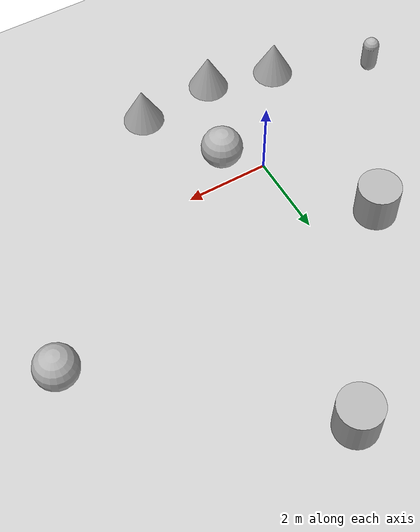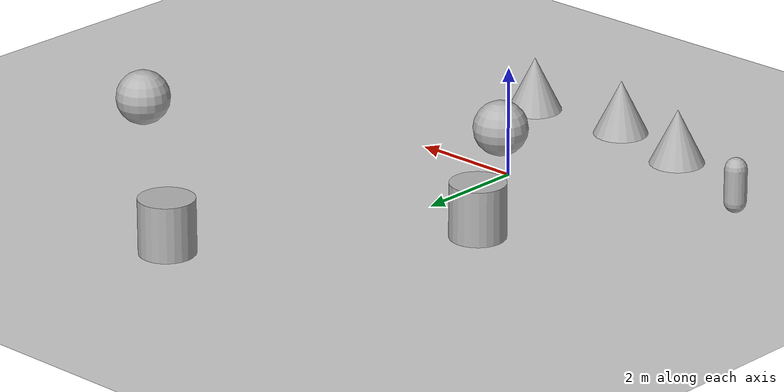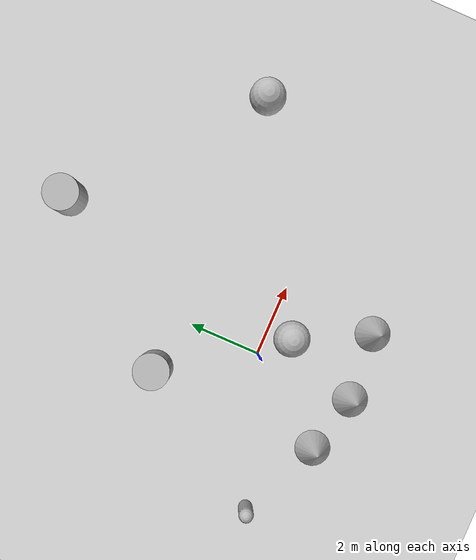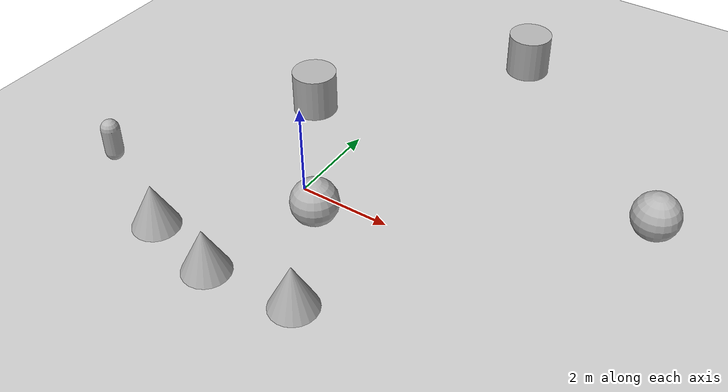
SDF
<sdf version='1.10'>
  <world name='empty'>
    <physics name='1ms' type='ignored'>
      <max_step_size>0.001</max_step_size>
      <real_time_factor>1</real_time_factor>
      <real_time_update_rate>1000</real_time_update_rate>
    </physics>
    <plugin name='gz::sim::systems::Physics' filename='gz-sim-physics-system'/>
    <plugin name='gz::sim::systems::UserCommands' filename='gz-sim-user-commands-system'/>
    <plugin name='gz::sim::systems::SceneBroadcaster' filename='gz-sim-scene-broadcaster-system'/>
    <plugin name='gz::sim::systems::Contact' filename='gz-sim-contact-system'/>
    <gravity>0 0 -9.8000000000000007</gravity>
    <magnetic_field>5.5644999999999998e-06 2.2875799999999999e-05 -4.2388400000000002e-05</magnetic_field>
    <atmosphere type='adiabatic'/>
    <scene>
      <ambient>0.400000006 0.400000006 0.400000006 1</ambient>
      <background>0.699999988 0.699999988 0.699999988 1</background>
      <shadows>true</shadows>
    </scene>
    <model name='ground_plane'>
      <static>true</static>
      <link name='link'>
        <collision name='collision'>
          <geometry>
            <plane>
              <normal>0 0 1</normal>
              <size>100 100</size>
            </plane>
          </geometry>
          <surface>
            <friction>
              <ode/>
            </friction>
            <bounce/>
            <contact/>
          </surface>
        </collision>
        <visual name='visual'>
          <geometry>
            <plane>
              <normal>0 0 1</normal>
              <size>100 100</size>
            </plane>
          </geometry>
          <material>
            <ambient>0.800000012 0.800000012 0.800000012 1</ambient>
            <diffuse>0.800000012 0.800000012 0.800000012 1</diffuse>
            <specular>0.800000012 0.800000012 0.800000012 1</specular>
          </material>
        </visual>
        <pose>0 0 0 0 0 0</pose>
        <inertial>
          <pose>0 0 0 0 0 0</pose>
          <mass>1</mass>
          <inertia>
            <ixx>1</ixx>
            <ixy>0</ixy>
            <ixz>0</ixz>
            <iyy>1</iyy>
            <iyz>0</iyz>
            <izz>1</izz>
          </inertia>
        </inertial>
        <enable_wind>false</enable_wind>
      </link>
      <pose>0 0 0 0 0 0</pose>
      <self_collide>false</self_collide>
    </model>
    <model name='cone'>
      <pose>-0.12296367767979 -2.8897992362541642 0.5 0 0 0</pose>
      <link name='cone_link'>
        <inertial>
          <inertia>
            <ixx>0.074999999999999997</ixx>
            <ixy>0</ixy>
            <ixz>0</ixz>
            <iyy>0.074999999999999997</iyy>
            <iyz>0</iyz>
            <izz>0.074999999999999997</izz>
          </inertia>
          <mass>1</mass>
          <pose>0 0 0 0 0 0</pose>
        </inertial>
        <collision name='cone_collision'>
          <geometry>
            <cone>
              <radius>0.5</radius>
              <length>1</length>
            </cone>
          </geometry>
          <surface>
            <friction>
              <ode/>
            </friction>
            <bounce/>
            <contact/>
          </surface>
        </collision>
        <visual name='cone_visual'>
          <geometry>
            <cone>
              <radius>0.5</radius>
              <length>1</length>
            </cone>
          </geometry>
          <material>
            <ambient>0.300000012 0.300000012 0.300000012 1</ambient>
            <diffuse>0.699999988 0.699999988 0.699999988 1</diffuse>
            <specular>1 1 1 1</specular>
          </material>
        </visual>
        <pose>0 0 0 0 0 0</pose>
        <enable_wind>false</enable_wind>
      </link>
      <static>false</static>
      <self_collide>false</self_collide>
    </model>
    <model name='cylinder'>
      <pose>-1.5054473958202514 2.453409194787219 0.5 0 0 0</pose>
      <link name='cylinder_link'>
        <inertial>
          <inertia>
            <ixx>0.14580000000000001</ixx>
            <ixy>0</ixy>
            <ixz>0</ixz>
            <iyy>0.14580000000000001</iyy>
            <iyz>0</iyz>
            <izz>0.125</izz>
          </inertia>
          <mass>1</mass>
          <pose>0 0 0 0 0 0</pose>
        </inertial>
        <collision name='cylinder_collision'>
          <geometry>
            <cylinder>
              <radius>0.5</radius>
              <length>1</length>
            </cylinder>
          </geometry>
          <surface>
            <friction>
              <ode/>
            </friction>
            <bounce/>
            <contact/>
          </surface>
        </collision>
        <visual name='cylinder_visual'>
          <geometry>
            <cylinder>
              <radius>0.5</radius>
              <length>1</length>
            </cylinder>
          </geometry>
          <material>
            <ambient>0.300000012 0.300000012 0.300000012 1</ambient>
            <diffuse>0.699999988 0.699999988 0.699999988 1</diffuse>
            <specular>1 1 1 1</specular>
          </material>
        </visual>
        <pose>0 0 0 0 0 0</pose>
        <enable_wind>false</enable_wind>
      </link>
      <static>false</static>
      <self_collide>false</self_collide>
    </model>
    <model name='capsule'>
      <pose>-4.0047065323800268 -1.3937246330336523 0.5 0 0 0</pose>
      <link name='capsule_link'>
        <inertial>
          <inertia>
            <ixx>0.074153999999999998</ixx>
            <ixy>0</ixy>
            <ixz>0</ixz>
            <iyy>0.074153999999999998</iyy>
            <iyz>0</iyz>
            <izz>0.018769000000000001</izz>
          </inertia>
          <mass>1</mass>
          <pose>0 0 0 0 0 0</pose>
        </inertial>
        <collision name='capsule_collision'>
          <geometry>
            <capsule>
              <radius>0.20000000000000001</radius>
              <length>0.59999999999999998</length>
            </capsule>
          </geometry>
          <surface>
            <friction>
              <ode/>
            </friction>
            <bounce/>
            <contact/>
          </surface>
        </collision>
        <visual name='capsule_visual'>
          <geometry>
            <capsule>
              <radius>0.20000000000000001</radius>
              <length>0.59999999999999998</length>
            </capsule>
          </geometry>
          <material>
            <ambient>0.300000012 0.300000012 0.300000012 1</ambient>
            <diffuse>0.699999988 0.699999988 0.699999988 1</diffuse>
            <specular>1 1 1 1</specular>
          </material>
        </visual>
        <pose>0 0 0 0 0 0</pose>
        <enable_wind>false</enable_wind>
      </link>
      <static>false</static>
      <self_collide>false</self_collide>
    </model>
    <model name='sphere'>
      <pose>6.5257373734222845 2.6017880681571133 0.5 0 0 0</pose>
      <link name='sphere_link'>
        <inertial>
          <inertia>
            <ixx>0.10000000000000001</ixx>
            <ixy>0</ixy>
            <ixz>0</ixz>
            <iyy>0.10000000000000001</iyy>
            <iyz>0</iyz>
            <izz>0.10000000000000001</izz>
          </inertia>
          <mass>1</mass>
          <pose>0 0 0 0 0 0</pose>
        </inertial>
        <collision name='sphere_collision'>
          <geometry>
            <sphere>
              <radius>0.5</radius>
            </sphere>
          </geometry>
          <surface>
            <friction>
              <ode/>
            </friction>
            <bounce/>
            <contact/>
          </surface>
        </collision>
        <visual name='sphere_visual'>
          <geometry>
            <sphere>
              <radius>0.5</radius>
            </sphere>
          </geometry>
          <material>
            <ambient>0.300000012 0.300000012 0.300000012 1</ambient>
            <diffuse>0.699999988 0.699999988 0.699999988 1</diffuse>
            <specular>1 1 1 1</specular>
          </material>
        </visual>
        <pose>0 0 0 0 0 0</pose>
        <enable_wind>false</enable_wind>
      </link>
      <static>false</static>
      <self_collide>false</self_collide>
    </model>
    <model name='cylinder_0'>
      <pose>1.8589545337466635 6.5433291178627 0.5 0 0 0</pose>
      <link name='cylinder_link'>
        <inertial>
          <inertia>
            <ixx>0.14580000000000001</ixx>
            <ixy>0</ixy>
            <ixz>0</ixz>
            <iyy>0.14580000000000001</iyy>
            <iyz>0</iyz>
            <izz>0.125</izz>
          </inertia>
          <mass>1</mass>
          <pose>0 0 0 0 0 0</pose>
        </inertial>
        <collision name='cylinder_collision'>
          <geometry>
            <cylinder>
              <radius>0.5</radius>
              <length>1</length>
            </cylinder>
          </geometry>
          <surface>
            <friction>
              <ode/>
            </friction>
            <bounce/>
            <contact/>
          </surface>
        </collision>
        <visual name='cylinder_visual'>
          <geometry>
            <cylinder>
              <radius>0.5</radius>
              <length>1</length>
            </cylinder>
          </geometry>
          <material>
            <ambient>0.300000012 0.300000012 0.300000012 1</ambient>
            <diffuse>0.699999988 0.699999988 0.699999988 1</diffuse>
            <specular>1 1 1 1</specular>
          </material>
        </visual>
        <pose>0 0 0 0 0 0</pose>
        <enable_wind>false</enable_wind>
      </link>
      <static>false</static>
      <self_collide>false</self_collide>
    </model>
    <model name='sphere_0'>
      <pose>0.77165821912742416 -0.65268203742515152 0.5 0 0 0</pose>
      <link name='sphere_link'>
        <inertial>
          <inertia>
            <ixx>0.10000000000000001</ixx>
            <ixy>0</ixy>
            <ixz>0</ixz>
            <iyy>0.10000000000000001</iyy>
            <iyz>0</iyz>
            <izz>0.10000000000000001</izz>
          </inertia>
          <mass>1</mass>
          <pose>0 0 0 0 0 0</pose>
        </inertial>
        <collision name='sphere_collision'>
          <geometry>
            <sphere>
              <radius>0.5</radius>
            </sphere>
          </geometry>
          <surface>
            <friction>
              <ode/>
            </friction>
            <bounce/>
            <contact/>
          </surface>
        </collision>
        <visual name='sphere_visual'>
          <geometry>
            <sphere>
              <radius>0.5</radius>
            </sphere>
          </geometry>
          <material>
            <ambient>0.300000012 0.300000012 0.300000012 1</ambient>
            <diffuse>0.699999988 0.699999988 0.699999988 1</diffuse>
            <specular>1 1 1 1</specular>
          </material>
        </visual>
        <pose>0 0 0 0 0 0</pose>
        <enable_wind>false</enable_wind>
      </link>
      <static>false</static>
      <self_collide>false</self_collide>
    </model>
    <model name='cone_0'>
      <pose>-1.7889994359822481 -2.4770777237494408 0.5 0 0 0</pose>
      <link name='cone_link'>
        <inertial>
          <inertia>
            <ixx>0.074999999999999997</ixx>
            <ixy>0</ixy>
            <ixz>0</ixz>
            <iyy>0.074999999999999997</iyy>
            <iyz>0</iyz>
            <izz>0.074999999999999997</izz>
          </inertia>
          <mass>1</mass>
          <pose>0 0 0 0 0 0</pose>
        </inertial>
        <collision name='cone_collision'>
          <geometry>
            <cone>
              <radius>0.5</radius>
              <length>1</length>
            </cone>
          </geometry>
          <surface>
            <friction>
              <ode/>
            </friction>
            <bounce/>
            <contact/>
          </surface>
        </collision>
        <visual name='cone_visual'>
          <geometry>
            <cone>
              <radius>0.5</radius>
              <length>1</length>
            </cone>
          </geometry>
          <material>
            <ambient>0.300000012 0.300000012 0.300000012 1</ambient>
            <diffuse>0.699999988 0.699999988 0.699999988 1</diffuse>
            <specular>1 1 1 1</specular>
          </material>
        </visual>
        <pose>0 0 0 0 0 0</pose>
        <enable_wind>false</enable_wind>
      </link>
      <static>false</static>
      <self_collide>false</self_collide>
    </model>
    <model name='cone_1'>
      <pose>1.8049176002270331 -2.7284544100266666 0.5 0 0 0</pose>
      <link name='cone_link'>
        <inertial>
          <inertia>
            <ixx>0.074999999999999997</ixx>
            <ixy>0</ixy>
            <ixz>0</ixz>
            <iyy>0.074999999999999997</iyy>
            <iyz>0</iyz>
            <izz>0.074999999999999997</izz>
          </inertia>
          <mass>1</mass>
          <pose>0 0 0 0 0 0</pose>
        </inertial>
        <collision name='cone_collision'>
          <geometry>
            <cone>
              <radius>0.5</radius>
              <length>1</length>
            </cone>
          </geometry>
          <surface>
            <friction>
              <ode/>
            </friction>
            <bounce/>
            <contact/>
          </surface>
        </collision>
        <visual name='cone_visual'>
          <geometry>
            <cone>
              <radius>0.5</radius>
              <length>1</length>
            </cone>
          </geometry>
          <material>
            <ambient>0.300000012 0.300000012 0.300000012 1</ambient>
            <diffuse>0.699999988 0.699999988 0.699999988 1</diffuse>
            <specular>1 1 1 1</specular>
          </material>
        </visual>
        <pose>0 0 0 0 0 0</pose>
        <enable_wind>false</enable_wind>
      </link>
      <static>false</static>
      <self_collide>false</self_collide>
    </model>
    <light name='sun' type='directional'>
      <pose>0 0 10 0 0 0</pose>
      <cast_shadows>true</cast_shadows>
      <intensity>1</intensity>
      <direction>-0.5 0.10000000000000001 -0.90000000000000002</direction>
      <diffuse>0.800000012 0.800000012 0.800000012 1</diffuse>
      <specular>0.200000003 0.200000003 0.200000003 1</specular>
      <attenuation>
        <range>1000</range>
        <linear>0.01</linear>
        <constant>0.90000000000000002</constant>
        <quadratic>0.001</quadratic>
      </attenuation>
      <spot>
        <inner_angle>0</inner_angle>
        <outer_angle>0</outer_angle>
        <falloff>0</falloff>
      </spot>
    </light>
  </world>
</sdf>
